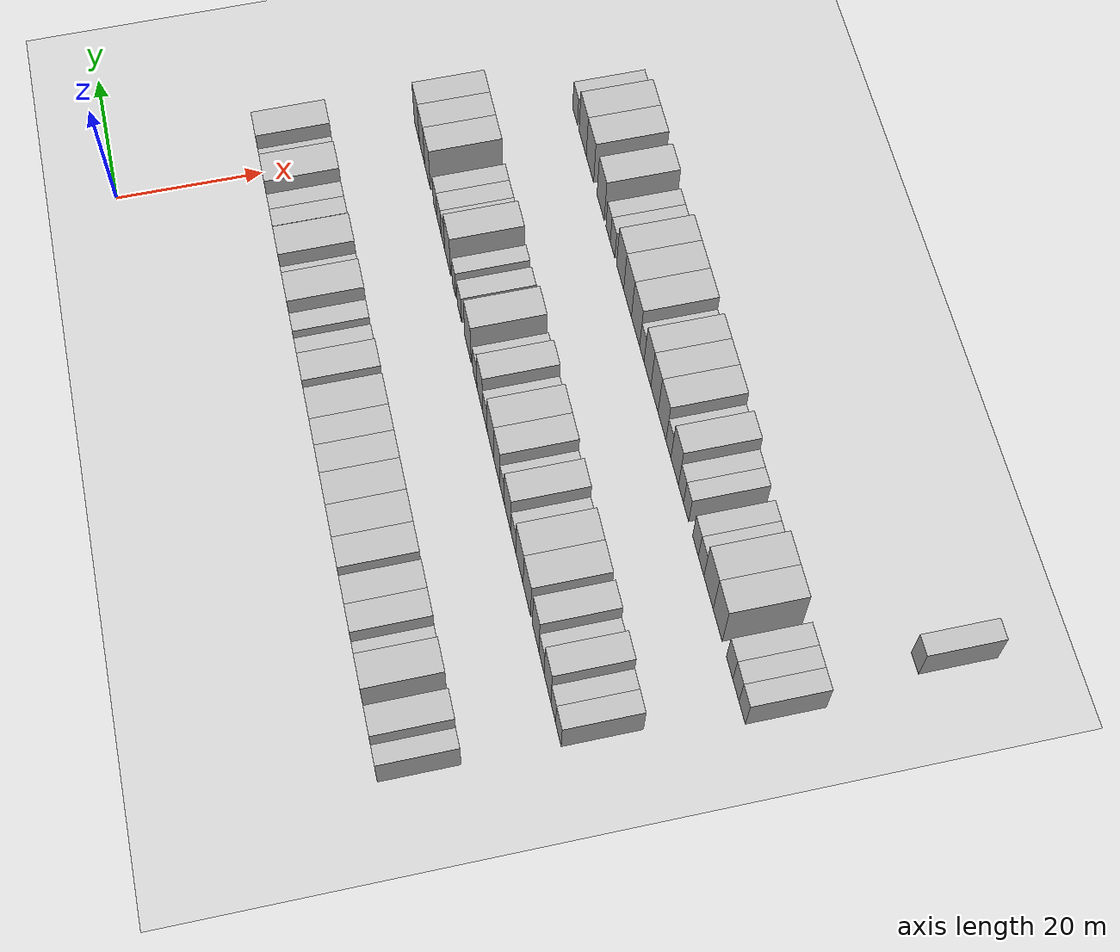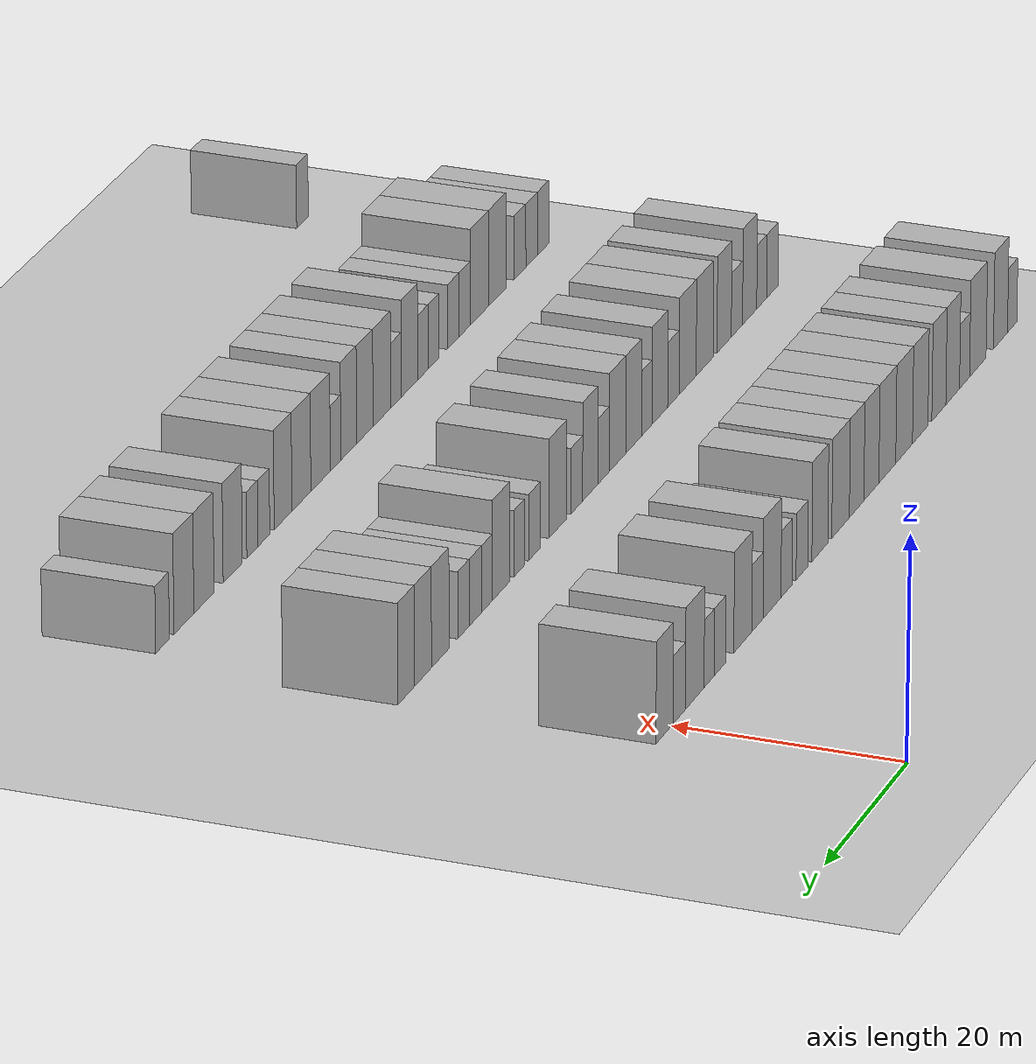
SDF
<sdf version="1.6">
 <world name="default">
  <include><name>ground_plane_1</name><uri>model://HANNAS_ground_plane</uri></include>
  <model name="building_77">
   <static>1</static>
   <pose>25.0000 -86.4664 0 0.000000 0.000000 0.000000</pose>
   <link name="link">
    <pose>0 0 3.00 0 0 0</pose>
    <collision name="collision"><geometry><box><size>10.0000 2.5761 6.0000</size></box></geometry></collision>
    <visual name="visual">
     <cast_shadows>0</cast_shadows>
     <geometry><box><size>10.0000 2.5761 6.0000</size></box></geometry>
     <material>
      <script>
       <uri>model://HANNAS_wall/materials/scripts</uri>
       <uri>model://HANNAS_wall/materials/textures</uri>
       <name>vrc/HANNAS_wall</name>
      </script>
     </material>
    </visual>
   </link>
  </model>
  <model name="building_78">
   <static>1</static>
   <pose>25.0000 -83.2716 0 0.000000 0.000000 0.000000</pose>
   <link name="link">
    <pose>0 0 4.50 0 0 0</pose>
    <collision name="collision"><geometry><box><size>10.0000 3.8135 9.0000</size></box></geometry></collision>
    <visual name="visual">
     <cast_shadows>0</cast_shadows>
     <geometry><box><size>10.0000 3.8135 9.0000</size></box></geometry>
     <material>
      <script>
       <uri>model://HANNAS_wall/materials/scripts</uri>
       <uri>model://HANNAS_wall/materials/textures</uri>
       <name>vrc/HANNAS_wall</name>
      </script>
     </material>
    </visual>
   </link>
  </model>
  <model name="building_79">
   <static>1</static>
   <pose>25.0000 -77.1444 0 0.000000 0.000000 0.000000</pose>
   <link name="link">
    <pose>0 0 4.50 0 0 0</pose>
    <collision name="collision"><geometry><box><size>10.0000 4.4409 9.0000</size></box></geometry></collision>
    <visual name="visual">
     <cast_shadows>0</cast_shadows>
     <geometry><box><size>10.0000 4.4409 9.0000</size></box></geometry>
     <material>
      <script>
       <uri>model://HANNAS_wall/materials/scripts</uri>
       <uri>model://HANNAS_wall/materials/textures</uri>
       <name>vrc/HANNAS_wall</name>
      </script>
     </material>
    </visual>
   </link>
  </model>
  <model name="building_80">
   <static>1</static>
   <pose>25.0000 -73.5842 0 0.000000 0.000000 0.000000</pose>
   <link name="link">
    <pose>0 0 3.00 0 0 0</pose>
    <collision name="collision"><geometry><box><size>10.0000 2.6794 6.0000</size></box></geometry></collision>
    <visual name="visual">
     <cast_shadows>0</cast_shadows>
     <geometry><box><size>10.0000 2.6794 6.0000</size></box></geometry>
     <material>
      <script>
       <uri>model://HANNAS_wall/materials/scripts</uri>
       <uri>model://HANNAS_wall/materials/textures</uri>
       <name>vrc/HANNAS_wall</name>
      </script>
     </material>
    </visual>
   </link>
  </model>
  <model name="building_81">
   <static>1</static>
   <pose>25.0000 -70.4255 0 0.000000 0.000000 0.000000</pose>
   <link name="link">
    <pose>0 0 4.50 0 0 0</pose>
    <collision name="collision"><geometry><box><size>10.0000 3.6381 9.0000</size></box></geometry></collision>
    <visual name="visual">
     <cast_shadows>0</cast_shadows>
     <geometry><box><size>10.0000 3.6381 9.0000</size></box></geometry>
     <material>
      <script>
       <uri>model://HANNAS_wall/materials/scripts</uri>
       <uri>model://HANNAS_wall/materials/textures</uri>
       <name>vrc/HANNAS_wall</name>
      </script>
     </material>
    </visual>
   </link>
  </model>
  <model name="building_82">
   <static>1</static>
   <pose>25.0000 -66.7418 0 0.000000 0.000000 0.000000</pose>
   <link name="link">
    <pose>0 0 4.50 0 0 0</pose>
    <collision name="collision"><geometry><box><size>10.0000 3.7292 9.0000</size></box></geometry></collision>
    <visual name="visual">
     <cast_shadows>0</cast_shadows>
     <geometry><box><size>10.0000 3.7292 9.0000</size></box></geometry>
     <material>
      <script>
       <uri>model://HANNAS_wall/materials/scripts</uri>
       <uri>model://HANNAS_wall/materials/textures</uri>
       <name>vrc/HANNAS_wall</name>
      </script>
     </material>
    </visual>
   </link>
  </model>
  <model name="building_83">
   <static>1</static>
   <pose>25.0000 -61.8438 0 0.000000 0.000000 0.000000</pose>
   <link name="link">
    <pose>0 0 4.50 0 0 0</pose>
    <collision name="collision"><geometry><box><size>10.0000 4.0668 9.0000</size></box></geometry></collision>
    <visual name="visual">
     <cast_shadows>0</cast_shadows>
     <geometry><box><size>10.0000 4.0668 9.0000</size></box></geometry>
     <material>
      <script>
       <uri>model://HANNAS_wall/materials/scripts</uri>
       <uri>model://HANNAS_wall/materials/textures</uri>
       <name>vrc/HANNAS_wall</name>
      </script>
     </material>
    </visual>
   </link>
  </model>
  <model name="building_84">
   <static>1</static>
   <pose>25.0000 -57.6308 0 0.000000 0.000000 0.000000</pose>
   <link name="link">
    <pose>0 0 4.50 0 0 0</pose>
    <collision name="collision"><geometry><box><size>10.0000 4.3592 9.0000</size></box></geometry></collision>
    <visual name="visual">
     <cast_shadows>0</cast_shadows>
     <geometry><box><size>10.0000 4.3592 9.0000</size></box></geometry>
     <material>
      <script>
       <uri>model://HANNAS_wall/materials/scripts</uri>
       <uri>model://HANNAS_wall/materials/textures</uri>
       <name>vrc/HANNAS_wall</name>
      </script>
     </material>
    </visual>
   </link>
  </model>
  <model name="building_85">
   <static>1</static>
   <pose>25.0000 -53.2681 0 0.000000 0.000000 0.000000</pose>
   <link name="link">
    <pose>0 0 4.50 0 0 0</pose>
    <collision name="collision"><geometry><box><size>10.0000 4.3663 9.0000</size></box></geometry></collision>
    <visual name="visual">
     <cast_shadows>0</cast_shadows>
     <geometry><box><size>10.0000 4.3663 9.0000</size></box></geometry>
     <material>
      <script>
       <uri>model://HANNAS_wall/materials/scripts</uri>
       <uri>model://HANNAS_wall/materials/textures</uri>
       <name>vrc/HANNAS_wall</name>
      </script>
     </material>
    </visual>
   </link>
  </model>
  <model name="building_86">
   <static>1</static>
   <pose>25.0000 -49.1597 0 0.000000 0.000000 0.000000</pose>
   <link name="link">
    <pose>0 0 4.50 0 0 0</pose>
    <collision name="collision"><geometry><box><size>10.0000 3.8505 9.0000</size></box></geometry></collision>
    <visual name="visual">
     <cast_shadows>0</cast_shadows>
     <geometry><box><size>10.0000 3.8505 9.0000</size></box></geometry>
     <material>
      <script>
       <uri>model://HANNAS_wall/materials/scripts</uri>
       <uri>model://HANNAS_wall/materials/textures</uri>
       <name>vrc/HANNAS_wall</name>
      </script>
     </material>
    </visual>
   </link>
  </model>
  <model name="building_87">
   <static>1</static>
   <pose>25.0000 -45.3836 0 0.000000 0.000000 0.000000</pose>
   <link name="link">
    <pose>0 0 4.50 0 0 0</pose>
    <collision name="collision"><geometry><box><size>10.0000 3.7018 9.0000</size></box></geometry></collision>
    <visual name="visual">
     <cast_shadows>0</cast_shadows>
     <geometry><box><size>10.0000 3.7018 9.0000</size></box></geometry>
     <material>
      <script>
       <uri>model://HANNAS_wall/materials/scripts</uri>
       <uri>model://HANNAS_wall/materials/textures</uri>
       <name>vrc/HANNAS_wall</name>
      </script>
     </material>
    </visual>
   </link>
  </model>
  <model name="building_88">
   <static>1</static>
   <pose>25.0000 -41.3009 0 0.000000 0.000000 0.000000</pose>
   <link name="link">
    <pose>0 0 4.50 0 0 0</pose>
    <collision name="collision"><geometry><box><size>10.0000 4.4637 9.0000</size></box></geometry></collision>
    <visual name="visual">
     <cast_shadows>0</cast_shadows>
     <geometry><box><size>10.0000 4.4637 9.0000</size></box></geometry>
     <material>
      <script>
       <uri>model://HANNAS_wall/materials/scripts</uri>
       <uri>model://HANNAS_wall/materials/textures</uri>
       <name>vrc/HANNAS_wall</name>
      </script>
     </material>
    </visual>
   </link>
  </model>
  <model name="building_89">
   <static>1</static>
   <pose>25.0000 -36.0653 0 0.000000 0.000000 0.000000</pose>
   <link name="link">
    <pose>0 0 4.50 0 0 0</pose>
    <collision name="collision"><geometry><box><size>10.0000 4.0073 9.0000</size></box></geometry></collision>
    <visual name="visual">
     <cast_shadows>0</cast_shadows>
     <geometry><box><size>10.0000 4.0073 9.0000</size></box></geometry>
     <material>
      <script>
       <uri>model://HANNAS_wall/materials/scripts</uri>
       <uri>model://HANNAS_wall/materials/textures</uri>
       <name>vrc/HANNAS_wall</name>
      </script>
     </material>
    </visual>
   </link>
  </model>
  <model name="building_90">
   <static>1</static>
   <pose>25.0000 -31.5920 0 0.000000 0.000000 0.000000</pose>
   <link name="link">
    <pose>0 0 3.00 0 0 0</pose>
    <collision name="collision"><geometry><box><size>10.0000 2.9394 6.0000</size></box></geometry></collision>
    <visual name="visual">
     <cast_shadows>0</cast_shadows>
     <geometry><box><size>10.0000 2.9394 6.0000</size></box></geometry>
     <material>
      <script>
       <uri>model://HANNAS_wall/materials/scripts</uri>
       <uri>model://HANNAS_wall/materials/textures</uri>
       <name>vrc/HANNAS_wall</name>
      </script>
     </material>
    </visual>
   </link>
  </model>
  <model name="building_91">
   <static>1</static>
   <pose>25.0000 -27.7470 0 0.000000 0.000000 0.000000</pose>
   <link name="link">
    <pose>0 0 3.00 0 0 0</pose>
    <collision name="collision"><geometry><box><size>10.0000 2.7506 6.0000</size></box></geometry></collision>
    <visual name="visual">
     <cast_shadows>0</cast_shadows>
     <geometry><box><size>10.0000 2.7506 6.0000</size></box></geometry>
     <material>
      <script>
       <uri>model://HANNAS_wall/materials/scripts</uri>
       <uri>model://HANNAS_wall/materials/textures</uri>
       <name>vrc/HANNAS_wall</name>
      </script>
     </material>
    </visual>
   </link>
  </model>
  <model name="building_92">
   <static>1</static>
   <pose>25.0000 -24.1716 0 0.000000 0.000000 0.000000</pose>
   <link name="link">
    <pose>0 0 4.50 0 0 0</pose>
    <collision name="collision"><geometry><box><size>10.0000 4.4003 9.0000</size></box></geometry></collision>
    <visual name="visual">
     <cast_shadows>0</cast_shadows>
     <geometry><box><size>10.0000 4.4003 9.0000</size></box></geometry>
     <material>
      <script>
       <uri>model://HANNAS_wall/materials/scripts</uri>
       <uri>model://HANNAS_wall/materials/textures</uri>
       <name>vrc/HANNAS_wall</name>
      </script>
     </material>
    </visual>
   </link>
  </model>
  <model name="building_93">
   <static>1</static>
   <pose>25.0000 -20.6028 0 0.000000 0.000000 0.000000</pose>
   <link name="link">
    <pose>0 0 3.00 0 0 0</pose>
    <collision name="collision"><geometry><box><size>10.0000 2.7372 6.0000</size></box></geometry></collision>
    <visual name="visual">
     <cast_shadows>0</cast_shadows>
     <geometry><box><size>10.0000 2.7372 6.0000</size></box></geometry>
     <material>
      <script>
       <uri>model://HANNAS_wall/materials/scripts</uri>
       <uri>model://HANNAS_wall/materials/textures</uri>
       <name>vrc/HANNAS_wall</name>
      </script>
     </material>
    </visual>
   </link>
  </model>
  <model name="building_94">
   <static>1</static>
   <pose>25.0000 -17.0392 0 0.000000 0.000000 0.000000</pose>
   <link name="link">
    <pose>0 0 4.50 0 0 0</pose>
    <collision name="collision"><geometry><box><size>10.0000 4.3899 9.0000</size></box></geometry></collision>
    <visual name="visual">
     <cast_shadows>0</cast_shadows>
     <geometry><box><size>10.0000 4.3899 9.0000</size></box></geometry>
     <material>
      <script>
       <uri>model://HANNAS_wall/materials/scripts</uri>
       <uri>model://HANNAS_wall/materials/textures</uri>
       <name>vrc/HANNAS_wall</name>
      </script>
     </material>
    </visual>
   </link>
  </model>
  <model name="building_95">
   <static>1</static>
   <pose>25.0000 -11.4844 0 0.000000 0.000000 0.000000</pose>
   <link name="link">
    <pose>0 0 3.00 0 0 0</pose>
    <collision name="collision"><geometry><box><size>10.0000 2.7197 6.0000</size></box></geometry></collision>
    <visual name="visual">
     <cast_shadows>0</cast_shadows>
     <geometry><box><size>10.0000 2.7197 6.0000</size></box></geometry>
     <material>
      <script>
       <uri>model://HANNAS_wall/materials/scripts</uri>
       <uri>model://HANNAS_wall/materials/textures</uri>
       <name>vrc/HANNAS_wall</name>
      </script>
     </material>
    </visual>
   </link>
  </model>
  <model name="building_96">
   <static>1</static>
   <pose>25.0000 -8.9059 0 0.000000 0.000000 0.000000</pose>
   <link name="link">
    <pose>0 0 3.00 0 0 0</pose>
    <collision name="collision"><geometry><box><size>10.0000 2.4373 6.0000</size></box></geometry></collision>
    <visual name="visual">
     <cast_shadows>0</cast_shadows>
     <geometry><box><size>10.0000 2.4373 6.0000</size></box></geometry>
     <material>
      <script>
       <uri>model://HANNAS_wall/materials/scripts</uri>
       <uri>model://HANNAS_wall/materials/textures</uri>
       <name>vrc/HANNAS_wall</name>
      </script>
     </material>
    </visual>
   </link>
  </model>
  <model name="building_97">
   <static>1</static>
   <pose>25.0000 -5.4728 0 0.000000 0.000000 0.000000</pose>
   <link name="link">
    <pose>0 0 4.50 0 0 0</pose>
    <collision name="collision"><geometry><box><size>10.0000 4.4290 9.0000</size></box></geometry></collision>
    <visual name="visual">
     <cast_shadows>0</cast_shadows>
     <geometry><box><size>10.0000 4.4290 9.0000</size></box></geometry>
     <material>
      <script>
       <uri>model://HANNAS_wall/materials/scripts</uri>
       <uri>model://HANNAS_wall/materials/textures</uri>
       <name>vrc/HANNAS_wall</name>
      </script>
     </material>
    </visual>
   </link>
  </model>
  <model name="building_98">
   <static>1</static>
   <pose>25.0000 -1.7704 0 0.000000 0.000000 0.000000</pose>
   <link name="link">
    <pose>0 0 3.00 0 0 0</pose>
    <collision name="collision"><geometry><box><size>10.0000 2.9758 6.0000</size></box></geometry></collision>
    <visual name="visual">
     <cast_shadows>0</cast_shadows>
     <geometry><box><size>10.0000 2.9758 6.0000</size></box></geometry>
     <material>
      <script>
       <uri>model://HANNAS_wall/materials/scripts</uri>
       <uri>model://HANNAS_wall/materials/textures</uri>
       <name>vrc/HANNAS_wall</name>
      </script>
     </material>
    </visual>
   </link>
  </model>
  <model name="building_99">
   <static>1</static>
   <pose>25.0000 1.7032 0 0.000000 0.000000 0.000000</pose>
   <link name="link">
    <pose>0 0 4.50 0 0 0</pose>
    <collision name="collision"><geometry><box><size>10.0000 3.9715 9.0000</size></box></geometry></collision>
    <visual name="visual">
     <cast_shadows>0</cast_shadows>
     <geometry><box><size>10.0000 3.9715 9.0000</size></box></geometry>
     <material>
      <script>
       <uri>model://HANNAS_wall/materials/scripts</uri>
       <uri>model://HANNAS_wall/materials/textures</uri>
       <name>vrc/HANNAS_wall</name>
      </script>
     </material>
    </visual>
   </link>
  </model>
  <model name="building_273">
   <static>1</static>
   <pose>47.0000 -86.5964 0 0.000000 0.000000 0.000000</pose>
   <link name="link">
    <pose>0 0 3.00 0 0 0</pose>
    <collision name="collision"><geometry><box><size>10.0000 2.9649 6.0000</size></box></geometry></collision>
    <visual name="visual">
     <cast_shadows>0</cast_shadows>
     <geometry><box><size>10.0000 2.9649 6.0000</size></box></geometry>
     <material>
      <script>
       <uri>model://HANNAS_wall/materials/scripts</uri>
       <uri>model://HANNAS_wall/materials/textures</uri>
       <name>vrc/HANNAS_wall</name>
      </script>
     </material>
    </visual>
   </link>
  </model>
  <model name="building_274">
   <static>1</static>
   <pose>47.0000 -83.8206 0 0.000000 0.000000 0.000000</pose>
   <link name="link">
    <pose>0 0 3.00 0 0 0</pose>
    <collision name="collision"><geometry><box><size>10.0000 2.5866 6.0000</size></box></geometry></collision>
    <visual name="visual">
     <cast_shadows>0</cast_shadows>
     <geometry><box><size>10.0000 2.5866 6.0000</size></box></geometry>
     <material>
      <script>
       <uri>model://HANNAS_wall/materials/scripts</uri>
       <uri>model://HANNAS_wall/materials/textures</uri>
       <name>vrc/HANNAS_wall</name>
      </script>
     </material>
    </visual>
   </link>
  </model>
  <model name="building_275">
   <static>1</static>
   <pose>47.0000 -80.6977 0 0.000000 0.000000 0.000000</pose>
   <link name="link">
    <pose>0 0 4.50 0 0 0</pose>
    <collision name="collision"><geometry><box><size>10.0000 3.6593 9.0000</size></box></geometry></collision>
    <visual name="visual">
     <cast_shadows>0</cast_shadows>
     <geometry><box><size>10.0000 3.6593 9.0000</size></box></geometry>
     <material>
      <script>
       <uri>model://HANNAS_wall/materials/scripts</uri>
       <uri>model://HANNAS_wall/materials/textures</uri>
       <name>vrc/HANNAS_wall</name>
      </script>
     </material>
    </visual>
   </link>
  </model>
  <model name="building_276">
   <static>1</static>
   <pose>47.0000 -77.4185 0 0.000000 0.000000 0.000000</pose>
   <link name="link">
    <pose>0 0 3.00 0 0 0</pose>
    <collision name="collision"><geometry><box><size>10.0000 2.8991 6.0000</size></box></geometry></collision>
    <visual name="visual">
     <cast_shadows>0</cast_shadows>
     <geometry><box><size>10.0000 2.8991 6.0000</size></box></geometry>
     <material>
      <script>
       <uri>model://HANNAS_wall/materials/scripts</uri>
       <uri>model://HANNAS_wall/materials/textures</uri>
       <name>vrc/HANNAS_wall</name>
      </script>
     </material>
    </visual>
   </link>
  </model>
  <model name="building_277">
   <static>1</static>
   <pose>47.0000 -74.1463 0 0.000000 0.000000 0.000000</pose>
   <link name="link">
    <pose>0 0 4.50 0 0 0</pose>
    <collision name="collision"><geometry><box><size>10.0000 3.6452 9.0000</size></box></geometry></collision>
    <visual name="visual">
     <cast_shadows>0</cast_shadows>
     <geometry><box><size>10.0000 3.6452 9.0000</size></box></geometry>
     <material>
      <script>
       <uri>model://HANNAS_wall/materials/scripts</uri>
       <uri>model://HANNAS_wall/materials/textures</uri>
       <name>vrc/HANNAS_wall</name>
      </script>
     </material>
    </visual>
   </link>
  </model>
  <model name="building_278">
   <static>1</static>
   <pose>47.0000 -69.1765 0 0.000000 0.000000 0.000000</pose>
   <link name="link">
    <pose>0 0 4.50 0 0 0</pose>
    <collision name="collision"><geometry><box><size>10.0000 4.2943 9.0000</size></box></geometry></collision>
    <visual name="visual">
     <cast_shadows>0</cast_shadows>
     <geometry><box><size>10.0000 4.2943 9.0000</size></box></geometry>
     <material>
      <script>
       <uri>model://HANNAS_wall/materials/scripts</uri>
       <uri>model://HANNAS_wall/materials/textures</uri>
       <name>vrc/HANNAS_wall</name>
      </script>
     </material>
    </visual>
   </link>
  </model>
  <model name="building_279">
   <static>1</static>
   <pose>47.0000 -64.8709 0 0.000000 0.000000 0.000000</pose>
   <link name="link">
    <pose>0 0 4.50 0 0 0</pose>
    <collision name="collision"><geometry><box><size>10.0000 4.3169 9.0000</size></box></geometry></collision>
    <visual name="visual">
     <cast_shadows>0</cast_shadows>
     <geometry><box><size>10.0000 4.3169 9.0000</size></box></geometry>
     <material>
      <script>
       <uri>model://HANNAS_wall/materials/scripts</uri>
       <uri>model://HANNAS_wall/materials/textures</uri>
       <name>vrc/HANNAS_wall</name>
      </script>
     </material>
    </visual>
   </link>
  </model>
  <model name="building_280">
   <static>1</static>
   <pose>47.0000 -61.2750 0 0.000000 0.000000 0.000000</pose>
   <link name="link">
    <pose>0 0 3.00 0 0 0</pose>
    <collision name="collision"><geometry><box><size>10.0000 2.8748 6.0000</size></box></geometry></collision>
    <visual name="visual">
     <cast_shadows>0</cast_shadows>
     <geometry><box><size>10.0000 2.8748 6.0000</size></box></geometry>
     <material>
      <script>
       <uri>model://HANNAS_wall/materials/scripts</uri>
       <uri>model://HANNAS_wall/materials/textures</uri>
       <name>vrc/HANNAS_wall</name>
      </script>
     </material>
    </visual>
   </link>
  </model>
  <model name="building_281">
   <static>1</static>
   <pose>47.0000 -57.8927 0 0.000000 0.000000 0.000000</pose>
   <link name="link">
    <pose>0 0 4.50 0 0 0</pose>
    <collision name="collision"><geometry><box><size>10.0000 3.8897 9.0000</size></box></geometry></collision>
    <visual name="visual">
     <cast_shadows>0</cast_shadows>
     <geometry><box><size>10.0000 3.8897 9.0000</size></box></geometry>
     <material>
      <script>
       <uri>model://HANNAS_wall/materials/scripts</uri>
       <uri>model://HANNAS_wall/materials/textures</uri>
       <name>vrc/HANNAS_wall</name>
      </script>
     </material>
    </visual>
   </link>
  </model>
  <model name="building_282">
   <static>1</static>
   <pose>47.0000 -54.6382 0 0.000000 0.000000 0.000000</pose>
   <link name="link">
    <pose>0 0 3.00 0 0 0</pose>
    <collision name="collision"><geometry><box><size>10.0000 2.6193 6.0000</size></box></geometry></collision>
    <visual name="visual">
     <cast_shadows>0</cast_shadows>
     <geometry><box><size>10.0000 2.6193 6.0000</size></box></geometry>
     <material>
      <script>
       <uri>model://HANNAS_wall/materials/scripts</uri>
       <uri>model://HANNAS_wall/materials/textures</uri>
       <name>vrc/HANNAS_wall</name>
      </script>
     </material>
    </visual>
   </link>
  </model>
  <model name="building_283">
   <static>1</static>
   <pose>47.0000 -51.4347 0 0.000000 0.000000 0.000000</pose>
   <link name="link">
    <pose>0 0 4.50 0 0 0</pose>
    <collision name="collision"><geometry><box><size>10.0000 3.7876 9.0000</size></box></geometry></collision>
    <visual name="visual">
     <cast_shadows>0</cast_shadows>
     <geometry><box><size>10.0000 3.7876 9.0000</size></box></geometry>
     <material>
      <script>
       <uri>model://HANNAS_wall/materials/scripts</uri>
       <uri>model://HANNAS_wall/materials/textures</uri>
       <name>vrc/HANNAS_wall</name>
      </script>
     </material>
    </visual>
   </link>
  </model>
  <model name="building_284">
   <static>1</static>
   <pose>47.0000 -47.4825 0 0.000000 0.000000 0.000000</pose>
   <link name="link">
    <pose>0 0 4.50 0 0 0</pose>
    <collision name="collision"><geometry><box><size>10.0000 4.1169 9.0000</size></box></geometry></collision>
    <visual name="visual">
     <cast_shadows>0</cast_shadows>
     <geometry><box><size>10.0000 4.1169 9.0000</size></box></geometry>
     <material>
      <script>
       <uri>model://HANNAS_wall/materials/scripts</uri>
       <uri>model://HANNAS_wall/materials/textures</uri>
       <name>vrc/HANNAS_wall</name>
      </script>
     </material>
    </visual>
   </link>
  </model>
  <model name="building_285">
   <static>1</static>
   <pose>47.0000 -44.0207 0 0.000000 0.000000 0.000000</pose>
   <link name="link">
    <pose>0 0 3.00 0 0 0</pose>
    <collision name="collision"><geometry><box><size>10.0000 2.8065 6.0000</size></box></geometry></collision>
    <visual name="visual">
     <cast_shadows>0</cast_shadows>
     <geometry><box><size>10.0000 2.8065 6.0000</size></box></geometry>
     <material>
      <script>
       <uri>model://HANNAS_wall/materials/scripts</uri>
       <uri>model://HANNAS_wall/materials/textures</uri>
       <name>vrc/HANNAS_wall</name>
      </script>
     </material>
    </visual>
   </link>
  </model>
  <model name="building_286">
   <static>1</static>
   <pose>47.0000 -40.7975 0 0.000000 0.000000 0.000000</pose>
   <link name="link">
    <pose>0 0 4.50 0 0 0</pose>
    <collision name="collision"><geometry><box><size>10.0000 3.6399 9.0000</size></box></geometry></collision>
    <visual name="visual">
     <cast_shadows>0</cast_shadows>
     <geometry><box><size>10.0000 3.6399 9.0000</size></box></geometry>
     <material>
      <script>
       <uri>model://HANNAS_wall/materials/scripts</uri>
       <uri>model://HANNAS_wall/materials/textures</uri>
       <name>vrc/HANNAS_wall</name>
      </script>
     </material>
    </visual>
   </link>
  </model>
  <model name="building_287">
   <static>1</static>
   <pose>47.0000 -37.5764 0 0.000000 0.000000 0.000000</pose>
   <link name="link">
    <pose>0 0 3.00 0 0 0</pose>
    <collision name="collision"><geometry><box><size>10.0000 2.8023 6.0000</size></box></geometry></collision>
    <visual name="visual">
     <cast_shadows>0</cast_shadows>
     <geometry><box><size>10.0000 2.8023 6.0000</size></box></geometry>
     <material>
      <script>
       <uri>model://HANNAS_wall/materials/scripts</uri>
       <uri>model://HANNAS_wall/materials/textures</uri>
       <name>vrc/HANNAS_wall</name>
      </script>
     </material>
    </visual>
   </link>
  </model>
  <model name="building_288">
   <static>1</static>
   <pose>47.0000 -33.0514 0 0.000000 0.000000 0.000000</pose>
   <link name="link">
    <pose>0 0 4.50 0 0 0</pose>
    <collision name="collision"><geometry><box><size>10.0000 4.2477 9.0000</size></box></geometry></collision>
    <visual name="visual">
     <cast_shadows>0</cast_shadows>
     <geometry><box><size>10.0000 4.2477 9.0000</size></box></geometry>
     <material>
      <script>
       <uri>model://HANNAS_wall/materials/scripts</uri>
       <uri>model://HANNAS_wall/materials/textures</uri>
       <name>vrc/HANNAS_wall</name>
      </script>
     </material>
    </visual>
   </link>
  </model>
  <model name="building_289">
   <static>1</static>
   <pose>47.0000 -27.5011 0 0.000000 0.000000 0.000000</pose>
   <link name="link">
    <pose>0 0 3.00 0 0 0</pose>
    <collision name="collision"><geometry><box><size>10.0000 2.8528 6.0000</size></box></geometry></collision>
    <visual name="visual">
     <cast_shadows>0</cast_shadows>
     <geometry><box><size>10.0000 2.8528 6.0000</size></box></geometry>
     <material>
      <script>
       <uri>model://HANNAS_wall/materials/scripts</uri>
       <uri>model://HANNAS_wall/materials/textures</uri>
       <name>vrc/HANNAS_wall</name>
      </script>
     </material>
    </visual>
   </link>
  </model>
  <model name="building_290">
   <static>1</static>
   <pose>47.0000 -23.8603 0 0.000000 0.000000 0.000000</pose>
   <link name="link">
    <pose>0 0 3.00 0 0 0</pose>
    <collision name="collision"><geometry><box><size>10.0000 2.4288 6.0000</size></box></geometry></collision>
    <visual name="visual">
     <cast_shadows>0</cast_shadows>
     <geometry><box><size>10.0000 2.4288 6.0000</size></box></geometry>
     <material>
      <script>
       <uri>model://HANNAS_wall/materials/scripts</uri>
       <uri>model://HANNAS_wall/materials/textures</uri>
       <name>vrc/HANNAS_wall</name>
      </script>
     </material>
    </visual>
   </link>
  </model>
  <model name="building_291">
   <static>1</static>
   <pose>47.0000 -19.6417 0 0.000000 0.000000 0.000000</pose>
   <link name="link">
    <pose>0 0 4.50 0 0 0</pose>
    <collision name="collision"><geometry><box><size>10.0000 4.0083 9.0000</size></box></geometry></collision>
    <visual name="visual">
     <cast_shadows>0</cast_shadows>
     <geometry><box><size>10.0000 4.0083 9.0000</size></box></geometry>
     <material>
      <script>
       <uri>model://HANNAS_wall/materials/scripts</uri>
       <uri>model://HANNAS_wall/materials/textures</uri>
       <name>vrc/HANNAS_wall</name>
      </script>
     </material>
    </visual>
   </link>
  </model>
  <model name="building_292">
   <static>1</static>
   <pose>47.0000 -16.3637 0 0.000000 0.000000 0.000000</pose>
   <link name="link">
    <pose>0 0 3.00 0 0 0</pose>
    <collision name="collision"><geometry><box><size>10.0000 2.5477 6.0000</size></box></geometry></collision>
    <visual name="visual">
     <cast_shadows>0</cast_shadows>
     <geometry><box><size>10.0000 2.5477 6.0000</size></box></geometry>
     <material>
      <script>
       <uri>model://HANNAS_wall/materials/scripts</uri>
       <uri>model://HANNAS_wall/materials/textures</uri>
       <name>vrc/HANNAS_wall</name>
      </script>
     </material>
    </visual>
   </link>
  </model>
  <model name="building_293">
   <static>1</static>
   <pose>47.0000 -13.6786 0 0.000000 0.000000 0.000000</pose>
   <link name="link">
    <pose>0 0 3.00 0 0 0</pose>
    <collision name="collision"><geometry><box><size>10.0000 2.8227 6.0000</size></box></geometry></collision>
    <visual name="visual">
     <cast_shadows>0</cast_shadows>
     <geometry><box><size>10.0000 2.8227 6.0000</size></box></geometry>
     <material>
      <script>
       <uri>model://HANNAS_wall/materials/scripts</uri>
       <uri>model://HANNAS_wall/materials/textures</uri>
       <name>vrc/HANNAS_wall</name>
      </script>
     </material>
    </visual>
   </link>
  </model>
  <model name="building_294">
   <static>1</static>
   <pose>47.0000 -10.9406 0 0.000000 0.000000 0.000000</pose>
   <link name="link">
    <pose>0 0 3.00 0 0 0</pose>
    <collision name="collision"><geometry><box><size>10.0000 2.6534 6.0000</size></box></geometry></collision>
    <visual name="visual">
     <cast_shadows>0</cast_shadows>
     <geometry><box><size>10.0000 2.6534 6.0000</size></box></geometry>
     <material>
      <script>
       <uri>model://HANNAS_wall/materials/scripts</uri>
       <uri>model://HANNAS_wall/materials/textures</uri>
       <name>vrc/HANNAS_wall</name>
      </script>
     </material>
    </visual>
   </link>
  </model>
  <model name="building_295">
   <static>1</static>
   <pose>47.0000 -5.6078 0 0.000000 0.000000 0.000000</pose>
   <link name="link">
    <pose>0 0 4.50 0 0 0</pose>
    <collision name="collision"><geometry><box><size>10.0000 4.0123 9.0000</size></box></geometry></collision>
    <visual name="visual">
     <cast_shadows>0</cast_shadows>
     <geometry><box><size>10.0000 4.0123 9.0000</size></box></geometry>
     <material>
      <script>
       <uri>model://HANNAS_wall/materials/scripts</uri>
       <uri>model://HANNAS_wall/materials/textures</uri>
       <name>vrc/HANNAS_wall</name>
      </script>
     </material>
    </visual>
   </link>
  </model>
  <model name="building_296">
   <static>1</static>
   <pose>47.0000 -1.6764 0 0.000000 0.000000 0.000000</pose>
   <link name="link">
    <pose>0 0 4.50 0 0 0</pose>
    <collision name="collision"><geometry><box><size>10.0000 3.8505 9.0000</size></box></geometry></collision>
    <visual name="visual">
     <cast_shadows>0</cast_shadows>
     <geometry><box><size>10.0000 3.8505 9.0000</size></box></geometry>
     <material>
      <script>
       <uri>model://HANNAS_wall/materials/scripts</uri>
       <uri>model://HANNAS_wall/materials/textures</uri>
       <name>vrc/HANNAS_wall</name>
      </script>
     </material>
    </visual>
   </link>
  </model>
  <model name="building_297">
   <static>1</static>
   <pose>47.0000 2.1157 0 0.000000 0.000000 0.000000</pose>
   <link name="link">
    <pose>0 0 4.50 0 0 0</pose>
    <collision name="collision"><geometry><box><size>10.0000 3.7337 9.0000</size></box></geometry></collision>
    <visual name="visual">
     <cast_shadows>0</cast_shadows>
     <geometry><box><size>10.0000 3.7337 9.0000</size></box></geometry>
     <material>
      <script>
       <uri>model://HANNAS_wall/materials/scripts</uri>
       <uri>model://HANNAS_wall/materials/textures</uri>
       <name>vrc/HANNAS_wall</name>
      </script>
     </material>
    </visual>
   </link>
  </model>
  <model name="building_460">
   <static>1</static>
   <pose>69.0000 -88.5442 0 0.000000 0.000000 0.000000</pose>
   <link name="link">
    <pose>0 0 3.00 0 0 0</pose>
    <collision name="collision"><geometry><box><size>10.0000 2.8781 6.0000</size></box></geometry></collision>
    <visual name="visual">
     <cast_shadows>0</cast_shadows>
     <geometry><box><size>10.0000 2.8781 6.0000</size></box></geometry>
     <material>
      <script>
       <uri>model://HANNAS_wall/materials/scripts</uri>
       <uri>model://HANNAS_wall/materials/textures</uri>
       <name>vrc/HANNAS_wall</name>
      </script>
     </material>
    </visual>
   </link>
  </model>
  <model name="building_461">
   <static>1</static>
   <pose>69.0000 -85.6811 0 0.000000 0.000000 0.000000</pose>
   <link name="link">
    <pose>0 0 3.00 0 0 0</pose>
    <collision name="collision"><geometry><box><size>10.0000 2.8480 6.0000</size></box></geometry></collision>
    <visual name="visual">
     <cast_shadows>0</cast_shadows>
     <geometry><box><size>10.0000 2.8480 6.0000</size></box></geometry>
     <material>
      <script>
       <uri>model://HANNAS_wall/materials/scripts</uri>
       <uri>model://HANNAS_wall/materials/textures</uri>
       <name>vrc/HANNAS_wall</name>
      </script>
     </material>
    </visual>
   </link>
  </model>
  <model name="building_462">
   <static>1</static>
   <pose>69.0000 -82.7772 0 0.000000 0.000000 0.000000</pose>
   <link name="link">
    <pose>0 0 3.00 0 0 0</pose>
    <collision name="collision"><geometry><box><size>10.0000 2.9598 6.0000</size></box></geometry></collision>
    <visual name="visual">
     <cast_shadows>0</cast_shadows>
     <geometry><box><size>10.0000 2.9598 6.0000</size></box></geometry>
     <material>
      <script>
       <uri>model://HANNAS_wall/materials/scripts</uri>
       <uri>model://HANNAS_wall/materials/textures</uri>
       <name>vrc/HANNAS_wall</name>
      </script>
     </material>
    </visual>
   </link>
  </model>
  <model name="building_463">
   <static>1</static>
   <pose>69.0000 -77.1558 0 0.000000 0.000000 0.000000</pose>
   <link name="link">
    <pose>0 0 4.50 0 0 0</pose>
    <collision name="collision"><geometry><box><size>10.0000 4.2830 9.0000</size></box></geometry></collision>
    <visual name="visual">
     <cast_shadows>0</cast_shadows>
     <geometry><box><size>10.0000 4.2830 9.0000</size></box></geometry>
     <material>
      <script>
       <uri>model://HANNAS_wall/materials/scripts</uri>
       <uri>model://HANNAS_wall/materials/textures</uri>
       <name>vrc/HANNAS_wall</name>
      </script>
     </material>
    </visual>
   </link>
  </model>
  <model name="building_464">
   <static>1</static>
   <pose>69.0000 -72.7893 0 0.000000 0.000000 0.000000</pose>
   <link name="link">
    <pose>0 0 4.50 0 0 0</pose>
    <collision name="collision"><geometry><box><size>10.0000 4.4500 9.0000</size></box></geometry></collision>
    <visual name="visual">
     <cast_shadows>0</cast_shadows>
     <geometry><box><size>10.0000 4.4500 9.0000</size></box></geometry>
     <material>
      <script>
       <uri>model://HANNAS_wall/materials/scripts</uri>
       <uri>model://HANNAS_wall/materials/textures</uri>
       <name>vrc/HANNAS_wall</name>
      </script>
     </material>
    </visual>
   </link>
  </model>
  <model name="building_465">
   <static>1</static>
   <pose>69.0000 -69.2073 0 0.000000 0.000000 0.000000</pose>
   <link name="link">
    <pose>0 0 3.00 0 0 0</pose>
    <collision name="collision"><geometry><box><size>10.0000 2.7139 6.0000</size></box></geometry></collision>
    <visual name="visual">
     <cast_shadows>0</cast_shadows>
     <geometry><box><size>10.0000 2.7139 6.0000</size></box></geometry>
     <material>
      <script>
       <uri>model://HANNAS_wall/materials/scripts</uri>
       <uri>model://HANNAS_wall/materials/textures</uri>
       <name>vrc/HANNAS_wall</name>
      </script>
     </material>
    </visual>
   </link>
  </model>
  <model name="building_466">
   <static>1</static>
   <pose>69.0000 -66.4328 0 0.000000 0.000000 0.000000</pose>
   <link name="link">
    <pose>0 0 3.00 0 0 0</pose>
    <collision name="collision"><geometry><box><size>10.0000 2.8352 6.0000</size></box></geometry></collision>
    <visual name="visual">
     <cast_shadows>0</cast_shadows>
     <geometry><box><size>10.0000 2.8352 6.0000</size></box></geometry>
     <material>
      <script>
       <uri>model://HANNAS_wall/materials/scripts</uri>
       <uri>model://HANNAS_wall/materials/textures</uri>
       <name>vrc/HANNAS_wall</name>
      </script>
     </material>
    </visual>
   </link>
  </model>
  <model name="building_467">
   <static>1</static>
   <pose>69.0000 -61.7150 0 0.000000 0.000000 0.000000</pose>
   <link name="link">
    <pose>0 0 3.00 0 0 0</pose>
    <collision name="collision"><geometry><box><size>10.0000 2.6005 6.0000</size></box></geometry></collision>
    <visual name="visual">
     <cast_shadows>0</cast_shadows>
     <geometry><box><size>10.0000 2.6005 6.0000</size></box></geometry>
     <material>
      <script>
       <uri>model://HANNAS_wall/materials/scripts</uri>
       <uri>model://HANNAS_wall/materials/textures</uri>
       <name>vrc/HANNAS_wall</name>
      </script>
     </material>
    </visual>
   </link>
  </model>
  <model name="building_468">
   <static>1</static>
   <pose>69.0000 -59.1460 0 0.000000 0.000000 0.000000</pose>
   <link name="link">
    <pose>0 0 3.00 0 0 0</pose>
    <collision name="collision"><geometry><box><size>10.0000 2.5374 6.0000</size></box></geometry></collision>
    <visual name="visual">
     <cast_shadows>0</cast_shadows>
     <geometry><box><size>10.0000 2.5374 6.0000</size></box></geometry>
     <material>
      <script>
       <uri>model://HANNAS_wall/materials/scripts</uri>
       <uri>model://HANNAS_wall/materials/textures</uri>
       <name>vrc/HANNAS_wall</name>
      </script>
     </material>
    </visual>
   </link>
  </model>
  <model name="building_469">
   <static>1</static>
   <pose>69.0000 -55.9370 0 0.000000 0.000000 0.000000</pose>
   <link name="link">
    <pose>0 0 4.50 0 0 0</pose>
    <collision name="collision"><geometry><box><size>10.0000 3.8807 9.0000</size></box></geometry></collision>
    <visual name="visual">
     <cast_shadows>0</cast_shadows>
     <geometry><box><size>10.0000 3.8807 9.0000</size></box></geometry>
     <material>
      <script>
       <uri>model://HANNAS_wall/materials/scripts</uri>
       <uri>model://HANNAS_wall/materials/textures</uri>
       <name>vrc/HANNAS_wall</name>
      </script>
     </material>
    </visual>
   </link>
  </model>
  <model name="building_470">
   <static>1</static>
   <pose>69.0000 -52.7295 0 0.000000 0.000000 0.000000</pose>
   <link name="link">
    <pose>0 0 3.00 0 0 0</pose>
    <collision name="collision"><geometry><box><size>10.0000 2.5343 6.0000</size></box></geometry></collision>
    <visual name="visual">
     <cast_shadows>0</cast_shadows>
     <geometry><box><size>10.0000 2.5343 6.0000</size></box></geometry>
     <material>
      <script>
       <uri>model://HANNAS_wall/materials/scripts</uri>
       <uri>model://HANNAS_wall/materials/textures</uri>
       <name>vrc/HANNAS_wall</name>
      </script>
     </material>
    </visual>
   </link>
  </model>
  <model name="building_471">
   <static>1</static>
   <pose>69.0000 -49.3853 0 0.000000 0.000000 0.000000</pose>
   <link name="link">
    <pose>0 0 4.50 0 0 0</pose>
    <collision name="collision"><geometry><box><size>10.0000 4.1542 9.0000</size></box></geometry></collision>
    <visual name="visual">
     <cast_shadows>0</cast_shadows>
     <geometry><box><size>10.0000 4.1542 9.0000</size></box></geometry>
     <material>
      <script>
       <uri>model://HANNAS_wall/materials/scripts</uri>
       <uri>model://HANNAS_wall/materials/textures</uri>
       <name>vrc/HANNAS_wall</name>
      </script>
     </material>
    </visual>
   </link>
  </model>
  <model name="building_472">
   <static>1</static>
   <pose>69.0000 -45.3934 0 0.000000 0.000000 0.000000</pose>
   <link name="link">
    <pose>0 0 4.50 0 0 0</pose>
    <collision name="collision"><geometry><box><size>10.0000 3.8296 9.0000</size></box></geometry></collision>
    <visual name="visual">
     <cast_shadows>0</cast_shadows>
     <geometry><box><size>10.0000 3.8296 9.0000</size></box></geometry>
     <material>
      <script>
       <uri>model://HANNAS_wall/materials/scripts</uri>
       <uri>model://HANNAS_wall/materials/textures</uri>
       <name>vrc/HANNAS_wall</name>
      </script>
     </material>
    </visual>
   </link>
  </model>
  <model name="building_473">
   <static>1</static>
   <pose>69.0000 -41.6319 0 0.000000 0.000000 0.000000</pose>
   <link name="link">
    <pose>0 0 4.50 0 0 0</pose>
    <collision name="collision"><geometry><box><size>10.0000 3.6933 9.0000</size></box></geometry></collision>
    <visual name="visual">
     <cast_shadows>0</cast_shadows>
     <geometry><box><size>10.0000 3.6933 9.0000</size></box></geometry>
     <material>
      <script>
       <uri>model://HANNAS_wall/materials/scripts</uri>
       <uri>model://HANNAS_wall/materials/textures</uri>
       <name>vrc/HANNAS_wall</name>
      </script>
     </material>
    </visual>
   </link>
  </model>
  <model name="building_474">
   <static>1</static>
   <pose>69.0000 -38.5703 0 0.000000 0.000000 0.000000</pose>
   <link name="link">
    <pose>0 0 3.00 0 0 0</pose>
    <collision name="collision"><geometry><box><size>10.0000 2.4299 6.0000</size></box></geometry></collision>
    <visual name="visual">
     <cast_shadows>0</cast_shadows>
     <geometry><box><size>10.0000 2.4299 6.0000</size></box></geometry>
     <material>
      <script>
       <uri>model://HANNAS_wall/materials/scripts</uri>
       <uri>model://HANNAS_wall/materials/textures</uri>
       <name>vrc/HANNAS_wall</name>
      </script>
     </material>
    </visual>
   </link>
  </model>
  <model name="building_475">
   <static>1</static>
   <pose>69.0000 -35.1195 0 0.000000 0.000000 0.000000</pose>
   <link name="link">
    <pose>0 0 4.50 0 0 0</pose>
    <collision name="collision"><geometry><box><size>10.0000 4.4717 9.0000</size></box></geometry></collision>
    <visual name="visual">
     <cast_shadows>0</cast_shadows>
     <geometry><box><size>10.0000 4.4717 9.0000</size></box></geometry>
     <material>
      <script>
       <uri>model://HANNAS_wall/materials/scripts</uri>
       <uri>model://HANNAS_wall/materials/textures</uri>
       <name>vrc/HANNAS_wall</name>
      </script>
     </material>
    </visual>
   </link>
  </model>
  <model name="building_476">
   <static>1</static>
   <pose>69.0000 -30.7228 0 0.000000 0.000000 0.000000</pose>
   <link name="link">
    <pose>0 0 4.50 0 0 0</pose>
    <collision name="collision"><geometry><box><size>10.0000 4.3217 9.0000</size></box></geometry></collision>
    <visual name="visual">
     <cast_shadows>0</cast_shadows>
     <geometry><box><size>10.0000 4.3217 9.0000</size></box></geometry>
     <material>
      <script>
       <uri>model://HANNAS_wall/materials/scripts</uri>
       <uri>model://HANNAS_wall/materials/textures</uri>
       <name>vrc/HANNAS_wall</name>
      </script>
     </material>
    </visual>
   </link>
  </model>
  <model name="building_477">
   <static>1</static>
   <pose>69.0000 -26.5493 0 0.000000 0.000000 0.000000</pose>
   <link name="link">
    <pose>0 0 4.50 0 0 0</pose>
    <collision name="collision"><geometry><box><size>10.0000 4.0253 9.0000</size></box></geometry></collision>
    <visual name="visual">
     <cast_shadows>0</cast_shadows>
     <geometry><box><size>10.0000 4.0253 9.0000</size></box></geometry>
     <material>
      <script>
       <uri>model://HANNAS_wall/materials/scripts</uri>
       <uri>model://HANNAS_wall/materials/textures</uri>
       <name>vrc/HANNAS_wall</name>
      </script>
     </material>
    </visual>
   </link>
  </model>
  <model name="building_478">
   <static>1</static>
   <pose>69.0000 -22.2195 0 0.000000 0.000000 0.000000</pose>
   <link name="link">
    <pose>0 0 3.00 0 0 0</pose>
    <collision name="collision"><geometry><box><size>10.0000 2.6343 6.0000</size></box></geometry></collision>
    <visual name="visual">
     <cast_shadows>0</cast_shadows>
     <geometry><box><size>10.0000 2.6343 6.0000</size></box></geometry>
     <material>
      <script>
       <uri>model://HANNAS_wall/materials/scripts</uri>
       <uri>model://HANNAS_wall/materials/textures</uri>
       <name>vrc/HANNAS_wall</name>
      </script>
     </material>
    </visual>
   </link>
  </model>
  <model name="building_479">
   <static>1</static>
   <pose>69.0000 -19.6440 0 0.000000 0.000000 0.000000</pose>
   <link name="link">
    <pose>0 0 3.00 0 0 0</pose>
    <collision name="collision"><geometry><box><size>10.0000 2.5167 6.0000</size></box></geometry></collision>
    <visual name="visual">
     <cast_shadows>0</cast_shadows>
     <geometry><box><size>10.0000 2.5167 6.0000</size></box></geometry>
     <material>
      <script>
       <uri>model://HANNAS_wall/materials/scripts</uri>
       <uri>model://HANNAS_wall/materials/textures</uri>
       <name>vrc/HANNAS_wall</name>
      </script>
     </material>
    </visual>
   </link>
  </model>
  <model name="building_480">
   <static>1</static>
   <pose>69.0000 -15.2576 0 0.000000 0.000000 0.000000</pose>
   <link name="link">
    <pose>0 0 4.50 0 0 0</pose>
    <collision name="collision"><geometry><box><size>10.0000 4.2562 9.0000</size></box></geometry></collision>
    <visual name="visual">
     <cast_shadows>0</cast_shadows>
     <geometry><box><size>10.0000 4.2562 9.0000</size></box></geometry>
     <material>
      <script>
       <uri>model://HANNAS_wall/materials/scripts</uri>
       <uri>model://HANNAS_wall/materials/textures</uri>
       <name>vrc/HANNAS_wall</name>
      </script>
     </material>
    </visual>
   </link>
  </model>
  <model name="building_481">
   <static>1</static>
   <pose>69.0000 -8.9069 0 0.000000 0.000000 0.000000</pose>
   <link name="link">
    <pose>0 0 4.50 0 0 0</pose>
    <collision name="collision"><geometry><box><size>10.0000 4.4451 9.0000</size></box></geometry></collision>
    <visual name="visual">
     <cast_shadows>0</cast_shadows>
     <geometry><box><size>10.0000 4.4451 9.0000</size></box></geometry>
     <material>
      <script>
       <uri>model://HANNAS_wall/materials/scripts</uri>
       <uri>model://HANNAS_wall/materials/textures</uri>
       <name>vrc/HANNAS_wall</name>
      </script>
     </material>
    </visual>
   </link>
  </model>
  <model name="building_482">
   <static>1</static>
   <pose>69.0000 -4.5137 0 0.000000 0.000000 0.000000</pose>
   <link name="link">
    <pose>0 0 4.50 0 0 0</pose>
    <collision name="collision"><geometry><box><size>10.0000 4.3413 9.0000</size></box></geometry></collision>
    <visual name="visual">
     <cast_shadows>0</cast_shadows>
     <geometry><box><size>10.0000 4.3413 9.0000</size></box></geometry>
     <material>
      <script>
       <uri>model://HANNAS_wall/materials/scripts</uri>
       <uri>model://HANNAS_wall/materials/textures</uri>
       <name>vrc/HANNAS_wall</name>
      </script>
     </material>
    </visual>
   </link>
  </model>
  <model name="building_483">
   <static>1</static>
   <pose>69.0000 0.1399 0 0.000000 0.000000 0.000000</pose>
   <link name="link">
    <pose>0 0 3.00 0 0 0</pose>
    <collision name="collision"><geometry><box><size>10.0000 2.9658 6.0000</size></box></geometry></collision>
    <visual name="visual">
     <cast_shadows>0</cast_shadows>
     <geometry><box><size>10.0000 2.9658 6.0000</size></box></geometry>
     <material>
      <script>
       <uri>model://HANNAS_wall/materials/scripts</uri>
       <uri>model://HANNAS_wall/materials/textures</uri>
       <name>vrc/HANNAS_wall</name>
      </script>
     </material>
    </visual>
   </link>
  </model>
  <model name="building_659">
   <static>1</static>
   <pose>91.0000 -86.8910 0 0.000000 0.000000 0.000000</pose>
   <link name="link">
    <pose>0 0 3.00 0 0 0</pose>
    <collision name="collision"><geometry><box><size>10.0000 2.7980 6.0000</size></box></geometry></collision>
    <visual name="visual">
     <cast_shadows>0</cast_shadows>
     <geometry><box><size>10.0000 2.7980 6.0000</size></box></geometry>
     <material>
      <script>
       <uri>model://HANNAS_wall/materials/scripts</uri>
       <uri>model://HANNAS_wall/materials/textures</uri>
       <name>vrc/HANNAS_wall</name>
      </script>
     </material>
    </visual>
   </link>
  </model>
 </world>
</sdf>
